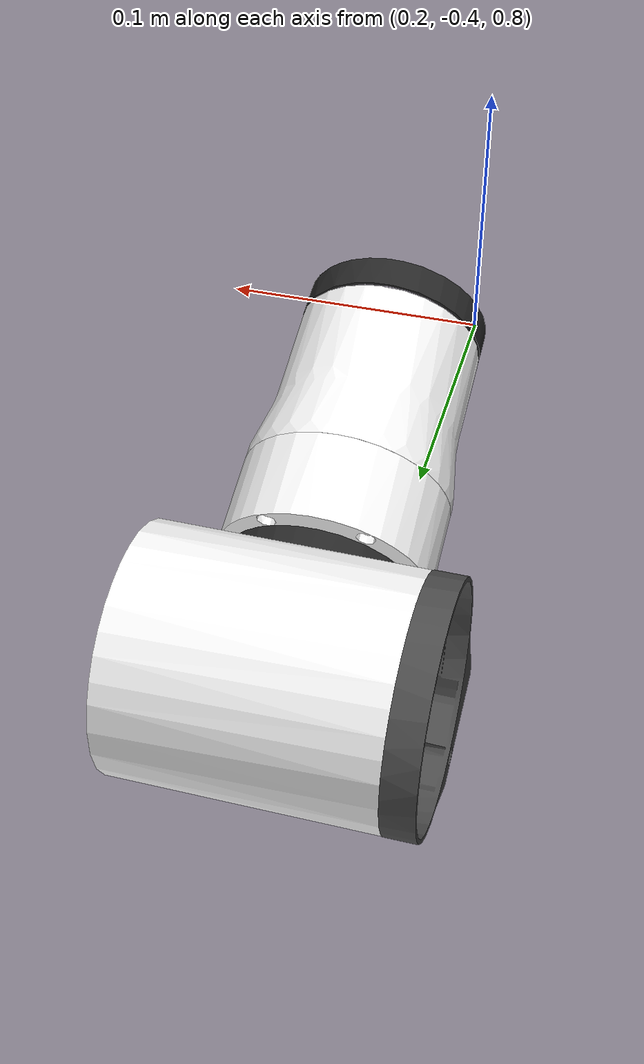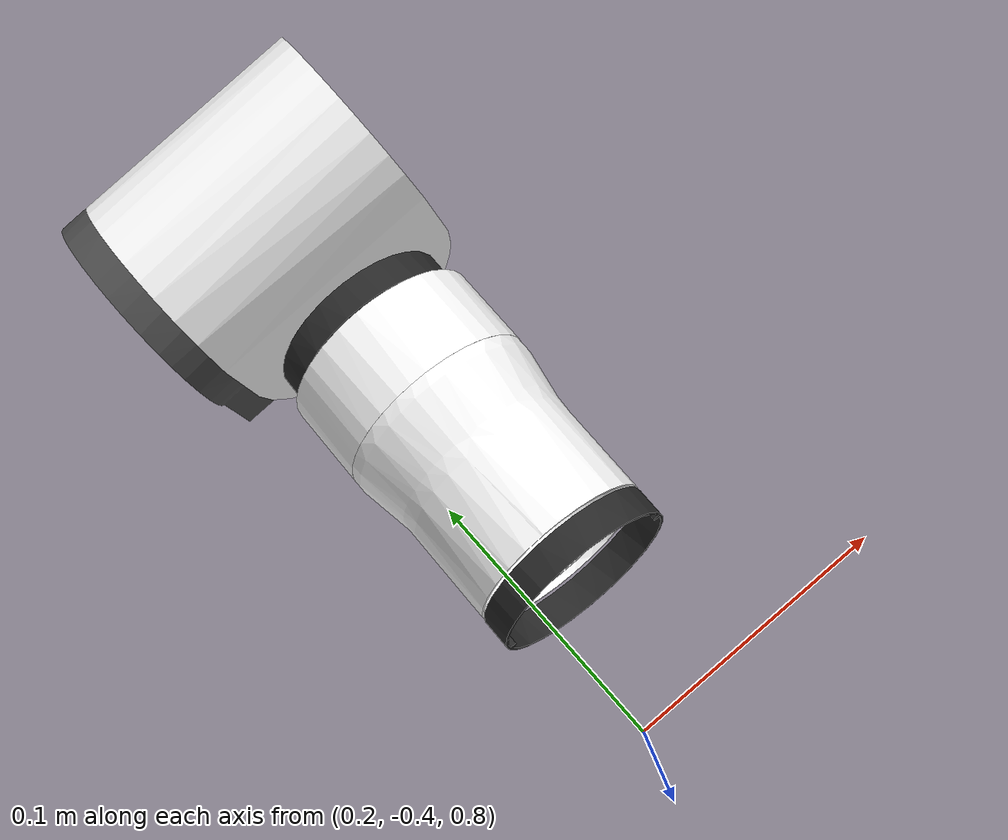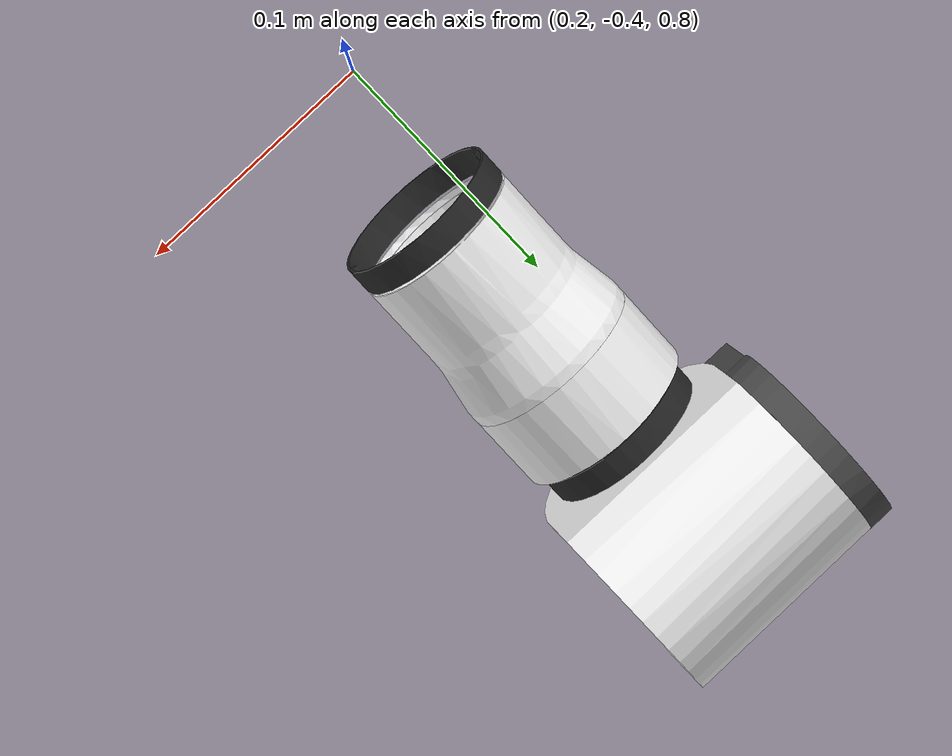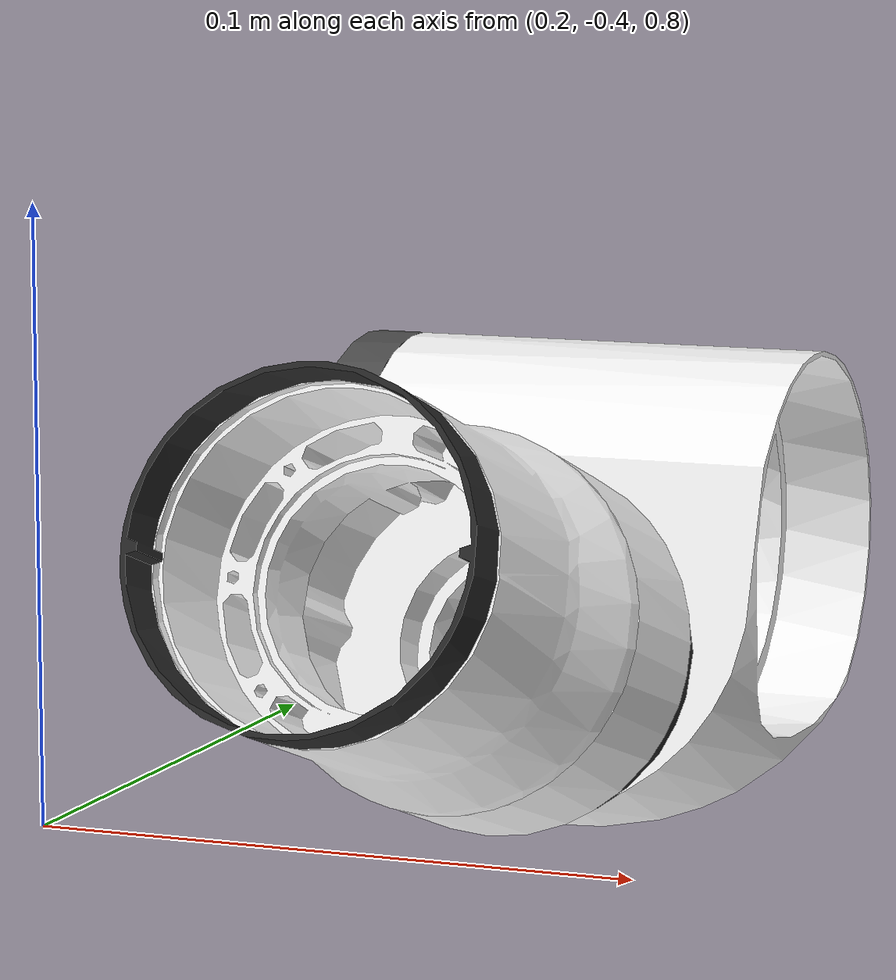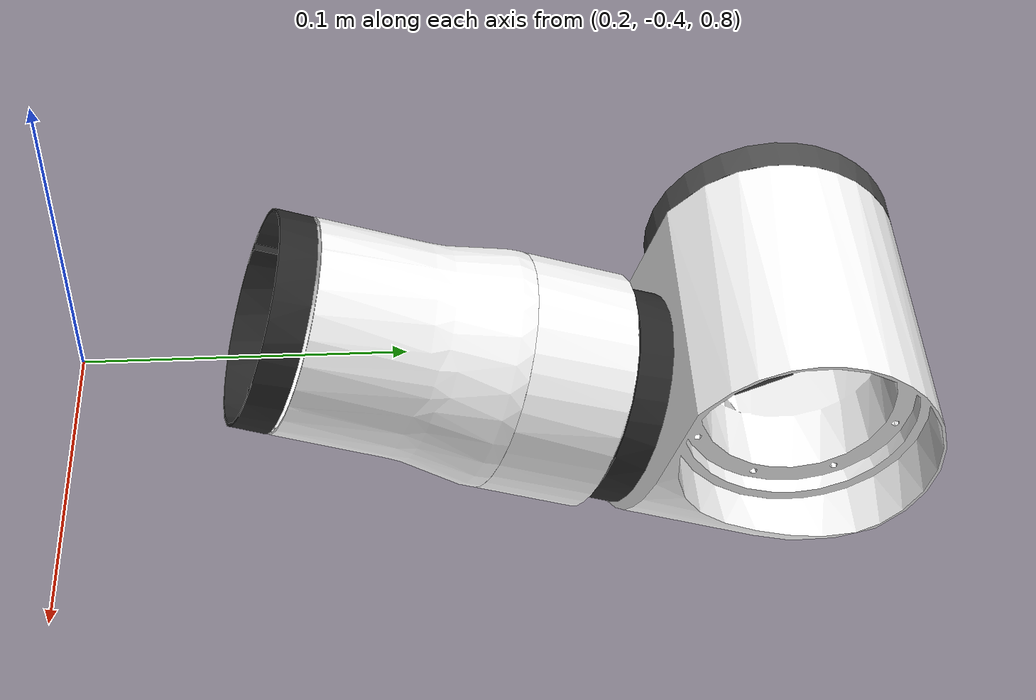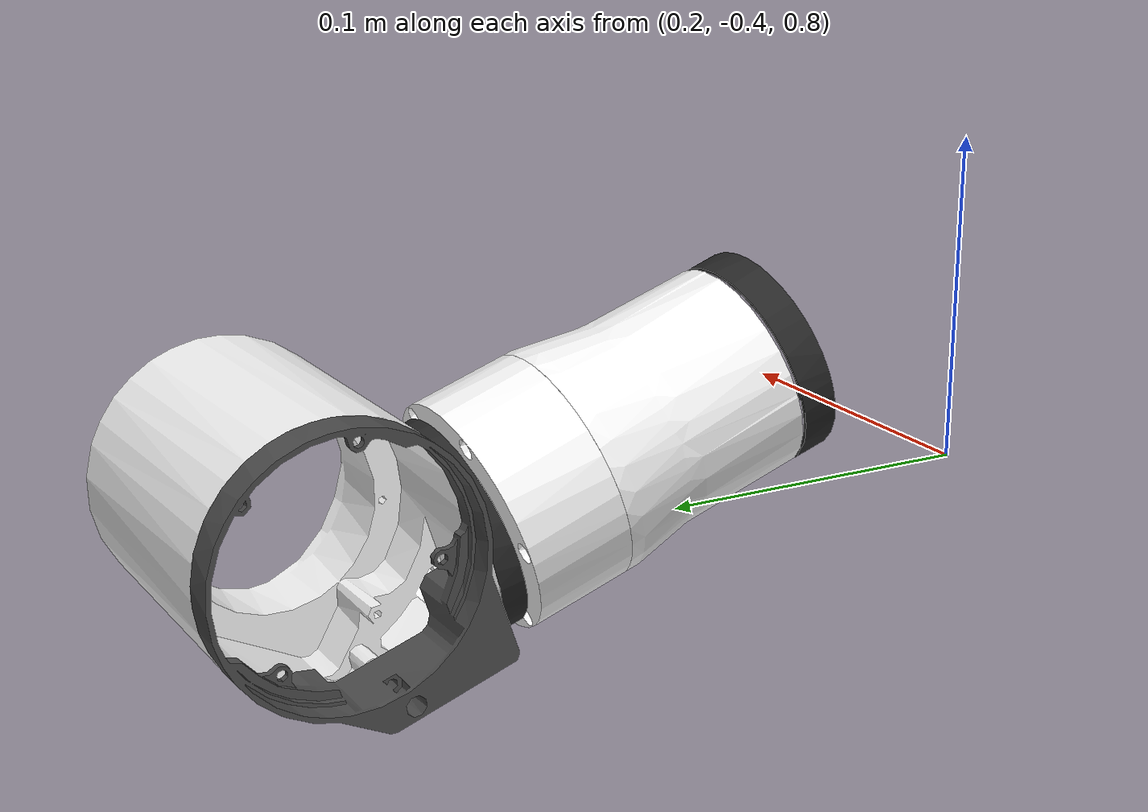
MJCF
<mujoco model="left_arm_4">
  <default>
    <default class="visual">
      <geom group="2" type="mesh" contype="0" conaffinity="0"/>
    </default>
    <default class="collision">
      <geom group="3" type="mesh"/>
    </default>
  </default>
  <asset>
    <material name="247,247,247_51.001" specular="1.0" shininess="0.2" rgba="0.968627 0.968627 0.968627 1.000000"/>
    <material name="247,247,247_52.001" specular="1.0" shininess="0.2" rgba="0.968627 0.968627 0.968627 1.000000"/>
    <material name="247,247,247_53.001" specular="1.0" shininess="0.2" rgba="0.968627 0.968627 0.968627 1.000000"/>
    <material name="39,39,39_8.001" specular="1.0" shininess="0.2" rgba="0.152941 0.152941 0.152941 1.000000"/>
    <material name="39,39,39_9.001" specular="1.0" shininess="0.2" rgba="0.152941 0.152941 0.152941 1.000000"/>
    <material name="75,75,75_63.001" specular="1.0" shininess="0.2" rgba="0.294118 0.294118 0.294118 1.000000"/>
    <mesh file="left_arm_4_0.obj"/>
    <mesh file="left_arm_4_1.obj"/>
    <mesh file="left_arm_4_2.obj"/>
    <mesh file="left_arm_4_3.obj"/>
    <mesh file="left_arm_4_4.obj"/>
    <mesh file="left_arm_4_5.obj"/>
  </asset>
  <worldbody>
    <body name="left_arm_4">
      <geom mesh="left_arm_4_0" material="39,39,39_8.001" class="visual"/>
      <geom mesh="left_arm_4_1" material="247,247,247_52.001" class="visual"/>
      <geom mesh="left_arm_4_2" material="247,247,247_51.001" class="visual"/>
      <geom mesh="left_arm_4_3" material="75,75,75_63.001" class="visual"/>
      <geom mesh="left_arm_4_4" material="247,247,247_53.001" class="visual"/>
      <geom mesh="left_arm_4_5" material="39,39,39_9.001" class="visual"/>
      <geom mesh="left_arm_4_0" class="collision"/>
      <geom mesh="left_arm_4_1" class="collision"/>
      <geom mesh="left_arm_4_2" class="collision"/>
      <geom mesh="left_arm_4_3" class="collision"/>
      <geom mesh="left_arm_4_4" class="collision"/>
      <geom mesh="left_arm_4_5" class="collision"/>
    </body>
  </worldbody>
</mujoco>
